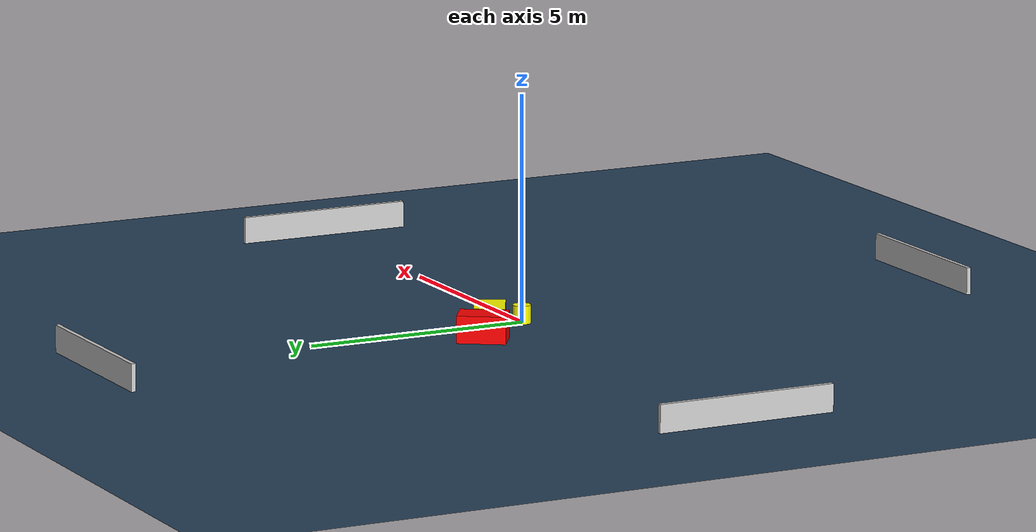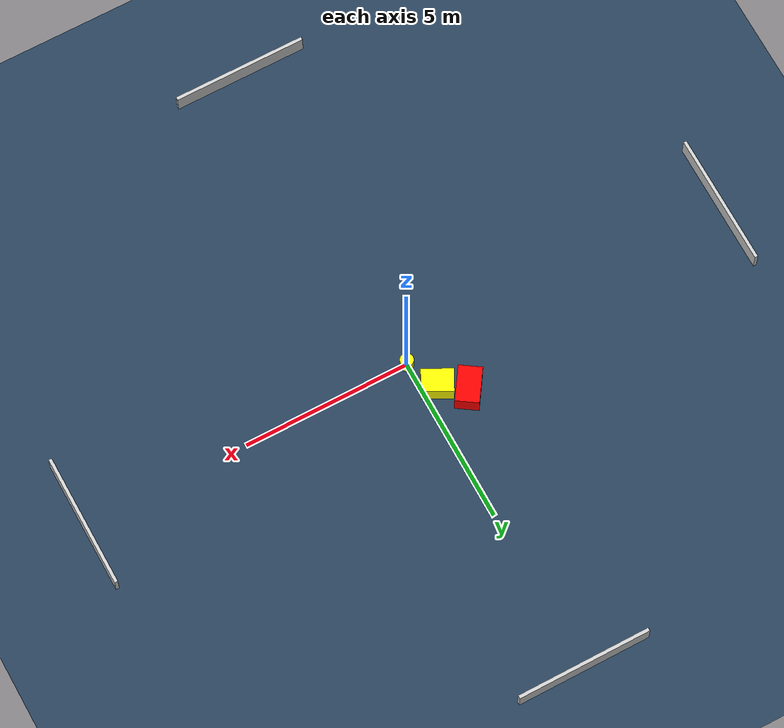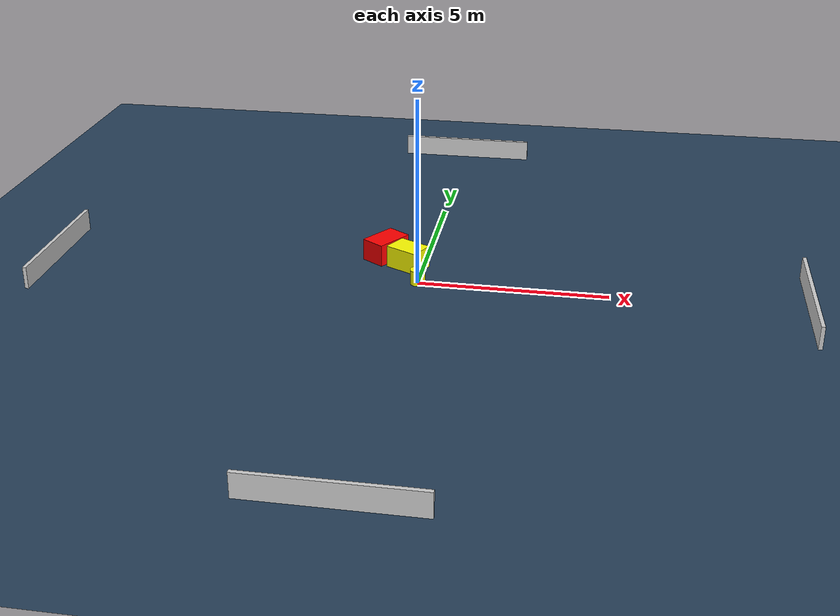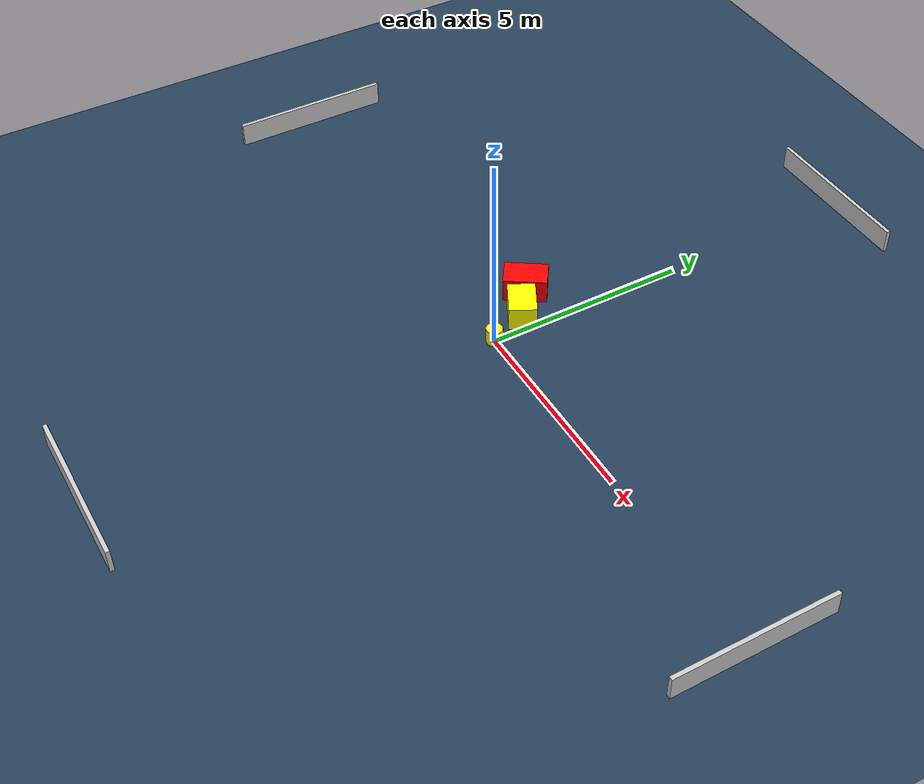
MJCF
<?xml version="1.0" ?>
<mujoco model="generated_environment">
  <option timestep="0.01" integrator="RK4" cone="elliptic"/>
  <default>
    <geom density="1"/>
  </default>
  <asset>
    <texture builtin="gradient" height="3072" name="skybox" rgb1="0.3 0.5 0.7" rgb2="0 0 0" type="skybox" width="512"/>
    <texture builtin="checker" height="300" name="groundplane" rgb1="0.2 0.3 0.4" rgb2="0.1 0.2 0.3" type="2d" width="300"/>
    <material name="groundplane" reflectance="0.2" texrepeat="5 5" texture="groundplane"/>
  </asset>
  <worldbody>
    <light dir="0 0 -1" directional="true" pos="0 0 1.5"/>
    <geom condim="3" friction="0.5 0.005 0.001" material="groundplane" name="floor" pos="0 0 0" size="0 0 0.05" type="plane"/>
    <body name="walls">
      <geom name="wall_1" condim="4" pos="-10.0 0.0 0.3" rgba="0.800000011920929 0.800000011920929 0.800000011920929 1.0" size="0.05 2.0 0.3" type="box"/>
      <geom name="wall_2" condim="4" pos="10.0 0.0 0.3" rgba="0.800000011920929 0.800000011920929 0.800000011920929 1.0" size="0.05 2.0 0.3" type="box"/>
      <geom name="wall_3" condim="4" pos="0.0 -10.0 0.3" rgba="0.800000011920929 0.800000011920929 0.800000011920929 1.0" size="2.0 0.05 0.3" type="box"/>
      <geom name="wall_4" condim="4" pos="0.0 10.0 0.3" rgba="0.800000011920929 0.800000011920929 0.800000011920929 1.0" size="2.0 0.05 0.3" type="box"/>
    </body>
    <body name="robot">
      <joint name="joint_x" type="slide" pos="0 0 0" axis="1 0 0"/>
      <joint name="joint_y" type="slide" pos="0 0 0" axis="0 1 0"/>
      <geom name="robot" type="cylinder" pos="0.0 0.0 0.2" size="0.2 0.2 0.0" mass="5.0" friction="1.0 0.005 0.0001" condim="4" rgba="1.0 1.0 0.0 1.0"/>
    </body>
    <body name="obstacle_1_movable">
      <geom name="obstacle_1_movable" condim="4" pos="-0.42601273099949355 0.9920136544398271 0.3" euler="0 0 152.41477086654717" friction="0.0 0.005 0.001" rgba="1.0 1.0 0.0 1.0" size="0.4646492633858283 0.3363979093423632 0.3" type="box" mass="0.1"/>
      <joint type="free"/>
    </body>
    <body name="obstacle_2_static">
      <geom name="obstacle_2_static" condim="4" pos="-1.1276841614002575 1.5058225914982448 0.3" euler="0 0 56.10540468263765" friction="0.0 0.005 0.001" rgba="1.0 0.0 0.0 1.0" size="0.5314312662187548 0.34552543946317915 0.3" type="box"/>
    </body>
  </worldbody>
  <actuator>
    <motor name="actuator_x" joint="joint_x" gear="1" ctrlrange="-1 1"/>
    <motor name="actuator_y" joint="joint_y" gear="1" ctrlrange="-1 1"/>
  </actuator>
</mujoco>
